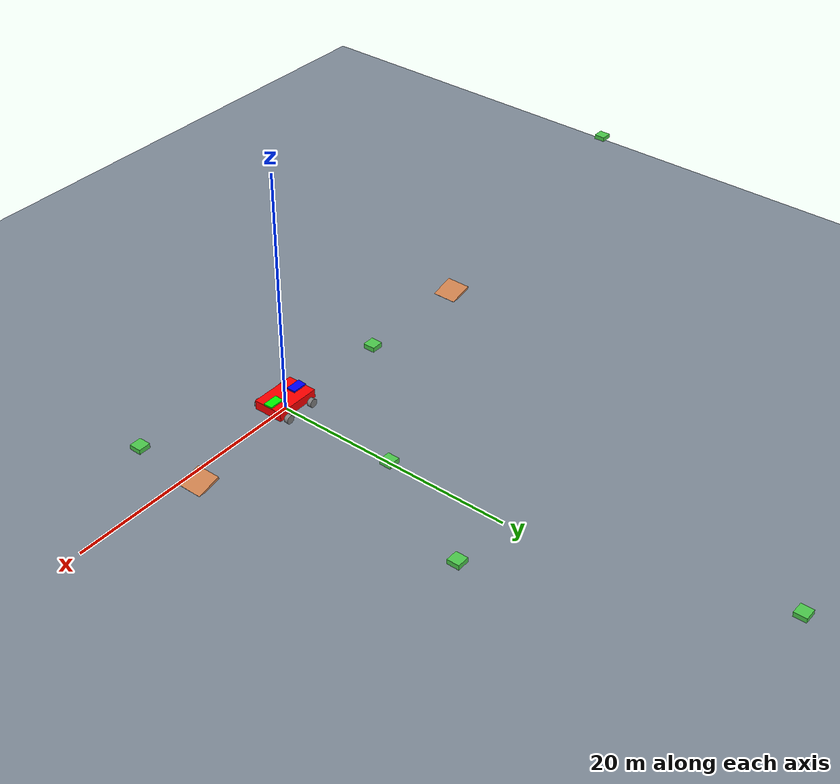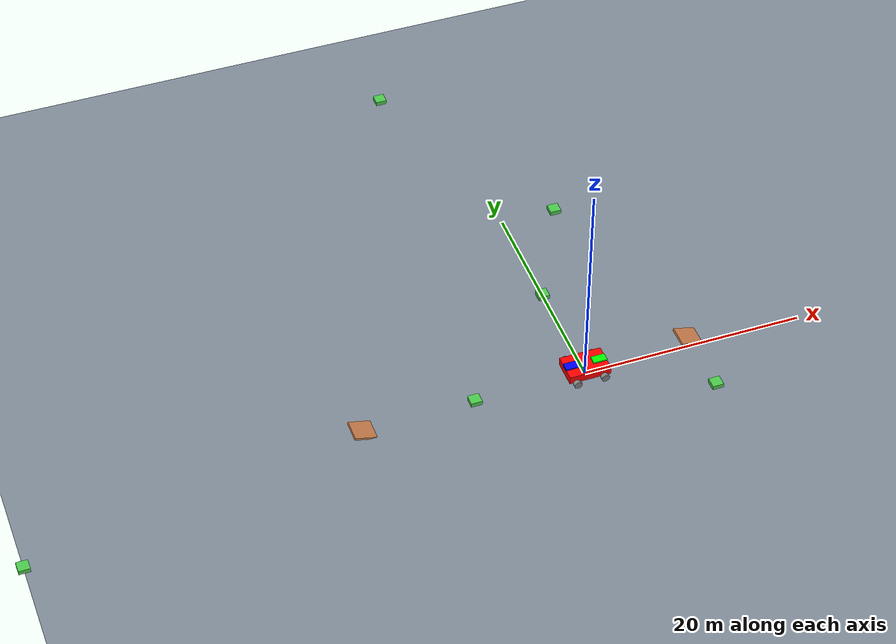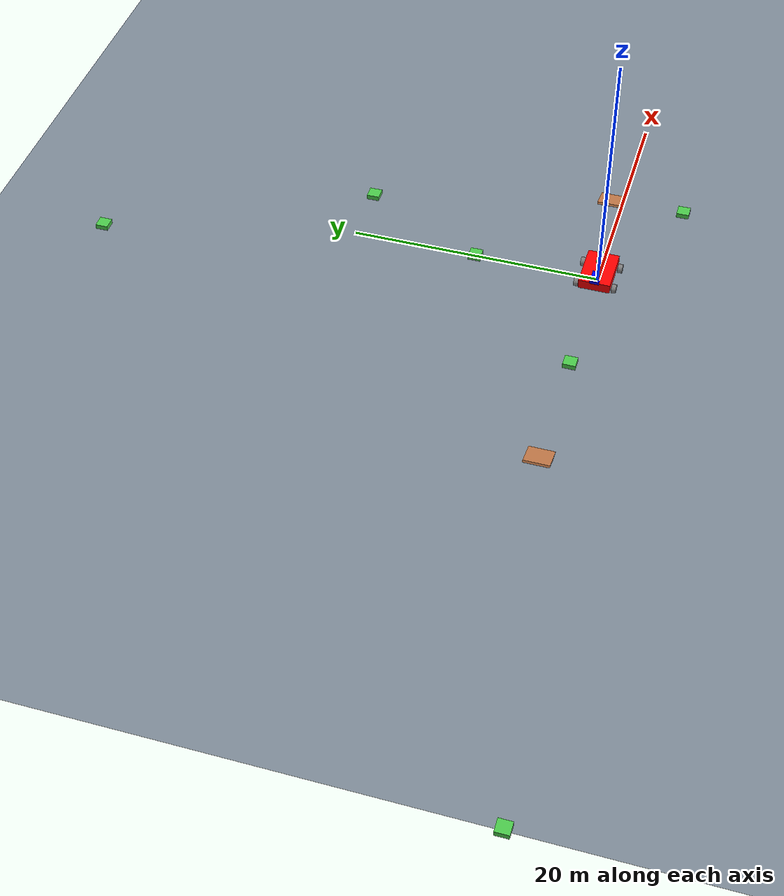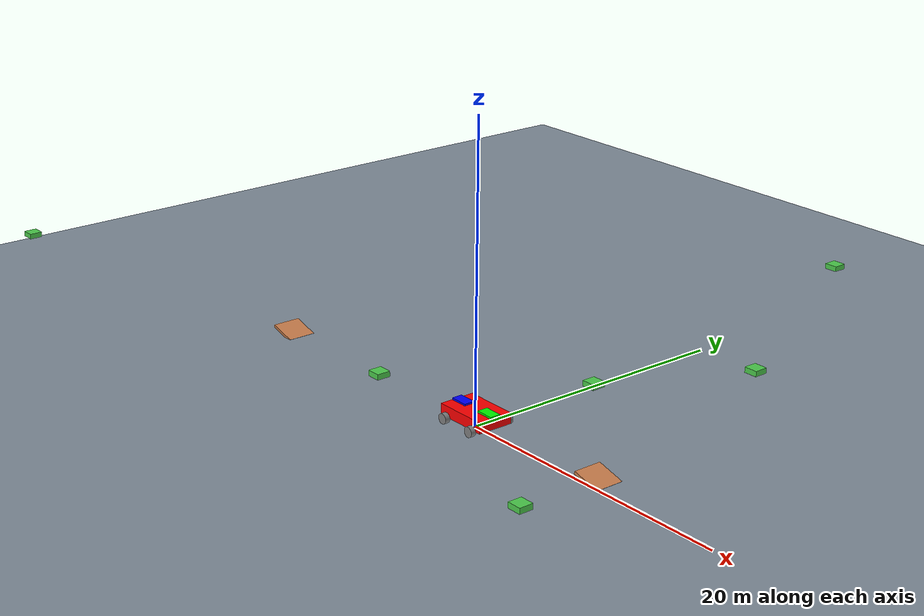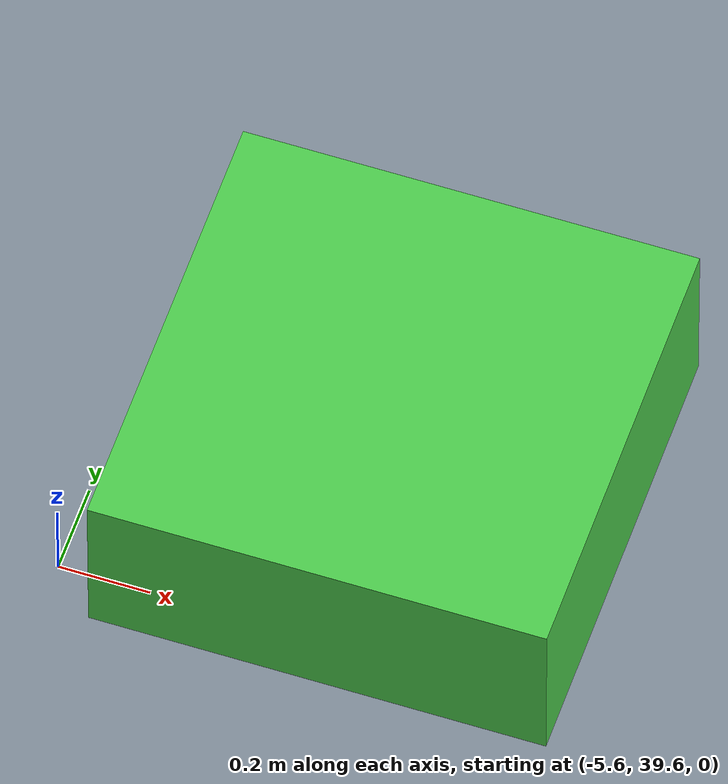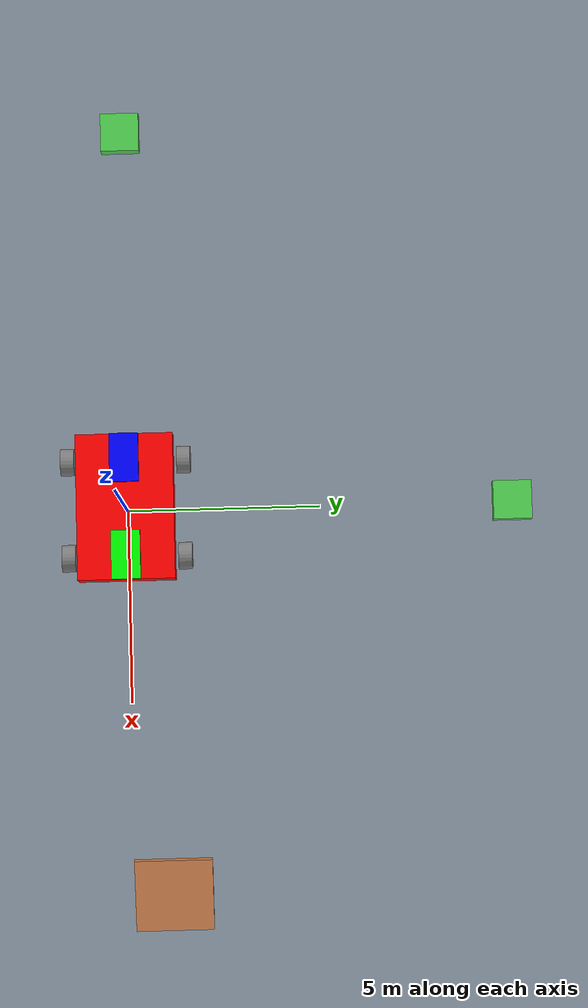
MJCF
<!--
목적 : (차량 모델 분리) 초기 테스트 차량 모델
작성자 : 김준호
최초 작성일자 : 2025-05-09
수정자 : 김준호
최종 수정일자 : 2025-05-09
-->
<mujoco>
  <compiler inertiafromgeom="true"/>
  <option timestep="0.001" gravity="0 0 -9.81"/>

  <asset>
    <texture name="grid" type="2d" builtin="checker"
             rgb1="0.2 0.3 0.4" rgb2="0.8 0.8 0.8"
             width="512" height="512"/>
    <material name="grid_mat" texture="grid" texrepeat="5 5"
              specular="0.3" shininess="0.3"/>
    <texture name="wheel_pattern" type="2d" builtin="checker"
             rgb1="1 1 1" rgb2="0 0 0"
             width="64" height="64"/>
    <material name="wheel_mat" texture="wheel_pattern" texrepeat="8 1"
              specular="0.5" shininess="0.5"/>
  </asset>

  <worldbody>
    <light directional="true" diffuse=".8 .8 .8" specular="0.2 0.2 0.2" pos="0 0 4" dir="0 0 -1"/>

    <!-- 바닥: 충돌용 평면 -->
    <geom name="floor" type="plane" size="50 50 0.1"
          material="grid_mat"
          friction="1 0.5 0.5"
          contype="1" conaffinity="1" condim="3"/>

    <!-- 차량 본체 + 바퀴 정의 -->
    <body name="chassis" pos="0 0 0.9">
      <joint name="root" type="free"/>
      <geom name="chassis" type="box" size="1.875 1.25 0.375"
            rgba="1 0 0 1" mass="960.0" friction="1 0.5 0.5"/>
      <geom name="front" type="box" size="0.625 0.375 0.125"
            pos="1.25 0 0.375" rgba="0 1 0 1" friction="1 0.5 0.5"/>
      <geom name="rear" type="box" size="0.625 0.375 0.125"
            pos="-1.25 0 0.375" rgba="0 0 1 1" friction="1 0.5 0.5"/>

      <!-- 앞왼쪽 바퀴 -->
      <body name="front_left_wheel" pos="1.25 1.5 -0.35">
        <joint name="fl_steer" type="hinge" axis="0 0 1"
               range="-0.6 0.6" damping="0" stiffness="0"/>
        <joint name="fl_wheel" type="hinge" axis="0 1 0" damping="0"/>
        <geom name="fl_geom" type="cylinder" size="0.35 0.175"
              euler="90 0 0" material="wheel_mat"
              mass="7.0" friction="0 0 0"
              solimp="0.9 0.95 0.001 0.1 2"
              contype="1" conaffinity="1" condim="3"
              margin="0.001" gap="0.0001"/>
        <site name="fl_site" pos="0 0 -0.7" size="0.01" group="3"/>
      </body>

      <!-- 앞오른쪽 바퀴 -->
      <body name="front_right_wheel" pos="1.25 -1.5 -0.35">
        <joint name="fr_steer" type="hinge" axis="0 0 1"
               range="-0.6 0.6" damping="0" stiffness="0"/>
        <joint name="fr_wheel" type="hinge" axis="0 1 0" damping="0"/>
        <geom name="fr_geom" type="cylinder" size="0.35 0.175"
              euler="90 0 0" material="wheel_mat"
              mass="7.0" friction="0 0 0"
              solimp="0.9 0.95 0.001 0.1 2"
              contype="1" conaffinity="1" condim="3"
              margin="0.001" gap="0.0001"/>
        <site name="fr_site" pos="0 0 -0.7" size="0.01" group="3"/>
      </body>

      <!-- 뒤왼쪽 바퀴 -->
      <body name="rear_left_wheel" pos="-1.25 1.5 -0.35">
        <joint name="rl_wheel" type="hinge" axis="0 1 0" damping="0"/>
        <geom name="rl_geom" type="cylinder" size="0.35 0.175"
              euler="90 0 0" material="wheel_mat"
              mass="7.0" friction="0 0 0"
              solimp="0.9 0.95 0.001 0.1 2"
              contype="1" conaffinity="1" condim="3"
              margin="0.001" gap="0.0001"/>
        <site name="rl_site" pos="0 0 -0.7" size="0.01" group="3"/>
      </body>

      <!-- 뒤오른쪽 바퀴 -->
      <body name="rear_right_wheel" pos="-1.25 -1.5 -0.35">
        <joint name="rr_wheel" type="hinge" axis="0 1 0" damping="0"/>
        <geom name="rr_geom" type="cylinder" size="0.35 0.175"
              euler="90 0 0" material="wheel_mat"
              mass="7.0" friction="0 0 0"
              solimp="0.9 0.95 0.001 0.1 2"
              contype="1" conaffinity="1" condim="3"
              margin="0.001" gap="0.0001"/>
        <site name="rr_site" pos="0 0 -0.7" size="0.01" group="3"/>
      </body>
    </body>

    <!-- 기존 점프대 및 장애물 -->
    <geom name="jump_ramp1" type="box" pos="-20 0 0.1"
          size="1 1 0.1" euler="0 15 0"
          rgba="0.8 0.5 0.3 1" friction="1 0.5 0.5"
          contype="1" conaffinity="1" condim="3"/>
    <geom name="jump_ramp2" type="box" pos="10 1 0.1"
          size="1 1 0.1" euler="0 15 0"
          rgba="0.8 0.5 0.3 1" friction="1 0.5 0.5"
          contype="1" conaffinity="1" condim="3"/>

    <geom name="obstacle1" type="box" pos="-50 -5 0.2"
          size="0.5 0.5 0.2" rgba="0.3 0.8 0.3 1" friction="1 0.5 0.5"
          contype="1" conaffinity="1" condim="3"/>
    <geom name="obstacle2" type="box" pos="-5 40 0.2"
          size="0.5 0.5 0.2" rgba="0.3 0.8 0.3 1" friction="1 0.5 0.5"
          contype="1" conaffinity="1" condim="3"/>
    <geom name="obstacle3" type="box" pos="0 10 0.2"
          size="0.5 0.5 0.2" rgba="0.3 0.8 0.3 1" friction="1 0.5 0.5"
          contype="1" conaffinity="1" condim="3"/>
    <geom name="obstacle4" type="box" pos="10 -5 0.2"
          size="0.5 0.5 0.2" rgba="0.3 0.8 0.3 1" friction="1 0.5 0.5"
          contype="1" conaffinity="1" condim="3"/>
    <geom name="obstacle5" type="box" pos="5 20 0.2"
          size="0.5 0.5 0.2" rgba="0.3 0.8 0.3 1" friction="1 0.5 0.5"
          contype="1" conaffinity="1" condim="3"/>
    <geom name="obstacle6" type="box" pos="-10 0 0.2"
          size="0.5 0.5 0.2" rgba="0.3 0.8 0.3 1" friction="1 0.5 0.5"
          contype="1" conaffinity="1" condim="3"/>

  </worldbody>

  <!-- 액츄에이터 (바퀴 동력 및 조향) -->
  <actuator>
    <motor name="fl_motor" joint="fl_wheel"      ctrlrange="-2000 2000" gear="1"/>
    <motor name="fr_motor" joint="fr_wheel"      ctrlrange="-2000 2000" gear="1"/>
    <motor name="rl_motor" joint="rl_wheel"      ctrlrange="-2000 2000" gear="1"/>
    <motor name="rr_motor" joint="rr_wheel"      ctrlrange="-2000 2000" gear="1"/>
    <motor name="fl_steer_motor" joint="fl_steer" ctrlrange="-200 200"   gear="10"/>
    <motor name="fr_steer_motor" joint="fr_steer" ctrlrange="-200 200"   gear="10"/>
  </actuator>

  <!-- 힘 측정 센서-->
  <sensor>
    <force name="fl_force" site="fl_site"/>
    <force name="fr_force" site="fr_site"/>
    <force name="rl_force" site="rl_site"/>
    <force name="rr_force" site="rr_site"/>
  </sensor>
</mujoco>
